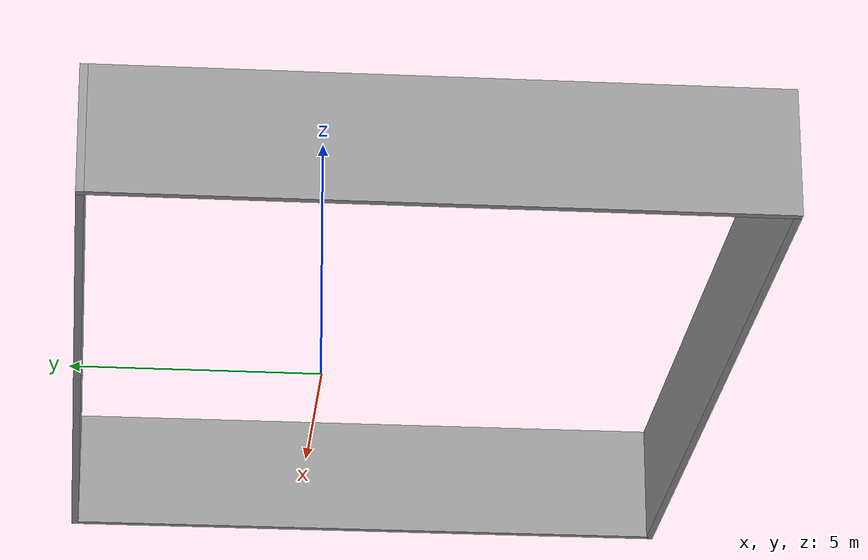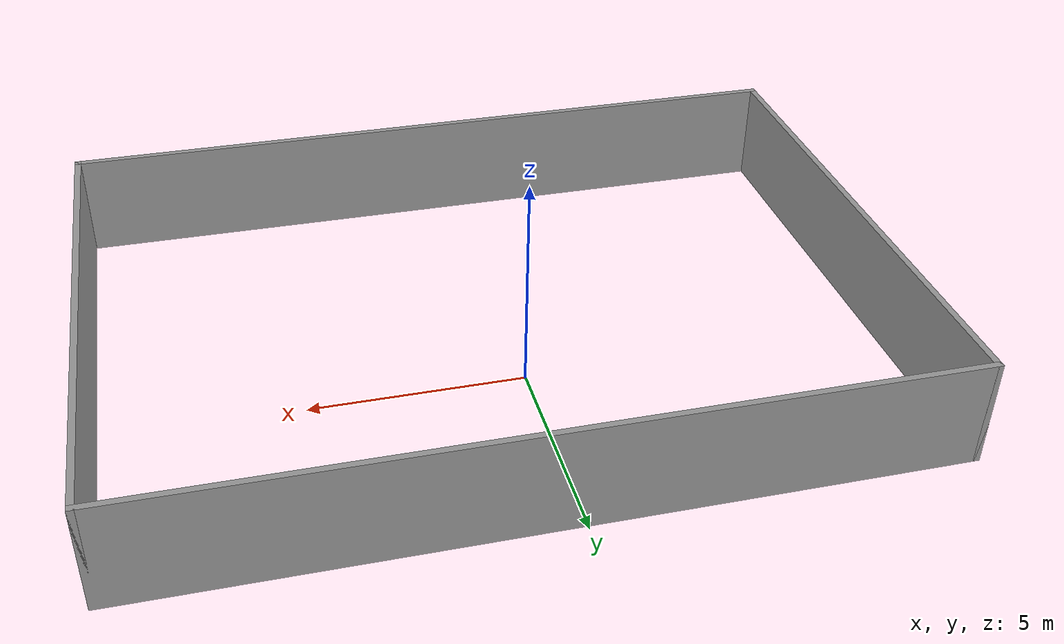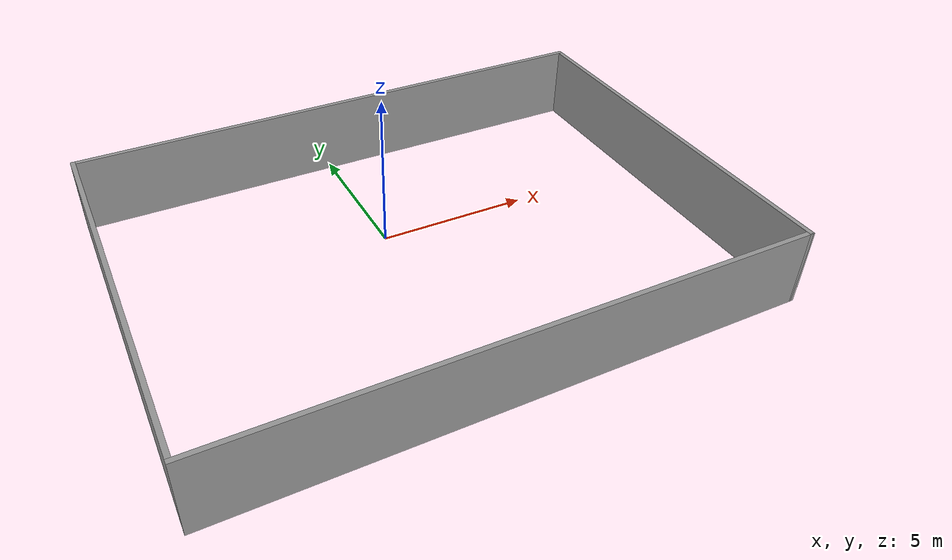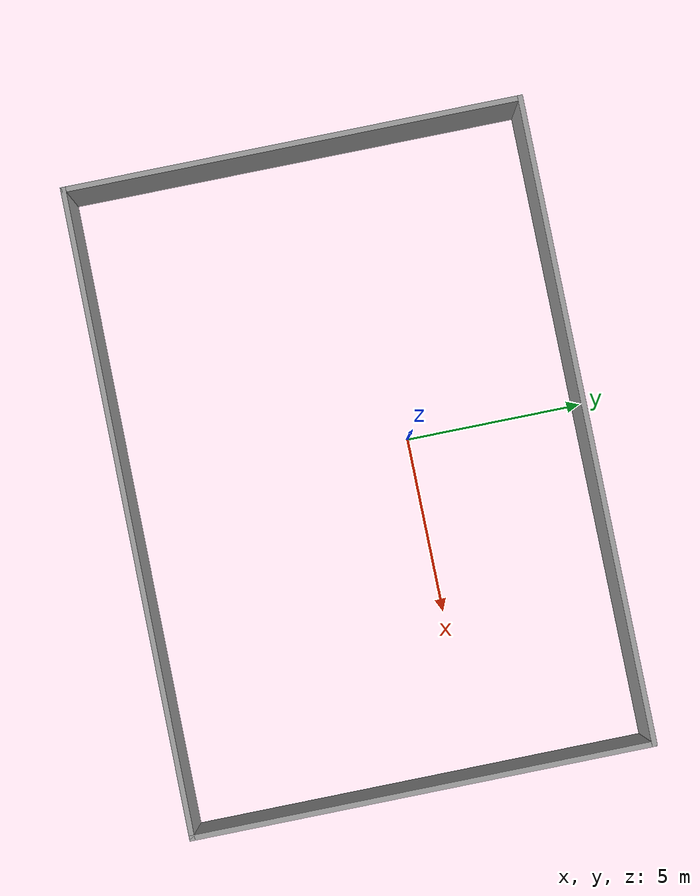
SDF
<?xml version='1.0'?>
<sdf version='1.7'>
  <model name='wall'>
    <pose>0.536992 -1.58009 0 0 -0 0</pose>
    <link name='Wall_18'>
      <collision name='Wall_18_Collision'>
        <geometry>
          <box>
            <size>18.25 0.15 2.5</size>
          </box>
        </geometry>
        <pose>0 0 1.25 0 -0 0</pose>
      </collision>
      <visual name='Wall_18_Visual'>
        <pose>0 0 1.25 0 -0 0</pose>
        <geometry>
          <box>
            <size>18.25 0.15 2.5</size>
          </box>
        </geometry>
        <material>
          <script>
            <uri>file://media/materials/scripts/gazebo.material</uri>
            <name>Gazebo/Grey</name>
          </script>
          <ambient>1 1 1 1</ambient>
        </material>
        <meta>
          <layer>0</layer>
        </meta>
      </visual>
      <pose>-0 6.425 0 0 -0 0</pose>
    </link>
    <link name='Wall_20'>
      <collision name='Wall_20_Collision'>
        <geometry>
          <box>
            <size>13 0.15 2.5</size>
          </box>
        </geometry>
        <pose>0 0 1.25 0 -0 0</pose>
      </collision>
      <visual name='Wall_20_Visual'>
        <pose>0 0 1.25 0 -0 0</pose>
        <geometry>
          <box>
            <size>13 0.15 2.5</size>
          </box>
        </geometry>
        <material>
          <script>
            <uri>file://media/materials/scripts/gazebo.material</uri>
            <name>Gazebo/Grey</name>
          </script>
          <ambient>1 1 1 1</ambient>
        </material>
        <meta>
          <layer>0</layer>
        </meta>
      </visual>
      <pose>-9.05 -0 0 0 -0 -1.5708</pose>
    </link>
    <link name='Wall_21'>
      <collision name='Wall_21_Collision'>
        <geometry>
          <box>
            <size>18.25 0.15 2.5</size>
          </box>
        </geometry>
        <pose>0 0 1.25 0 -0 0</pose>
      </collision>
      <visual name='Wall_21_Visual'>
        <pose>0 0 1.25 0 -0 0</pose>
        <geometry>
          <box>
            <size>18.25 0.15 2.5</size>
          </box>
        </geometry>
        <material>
          <script>
            <uri>file://media/materials/scripts/gazebo.material</uri>
            <name>Gazebo/Grey</name>
          </script>
          <ambient>1 1 1 1</ambient>
        </material>
        <meta>
          <layer>0</layer>
        </meta>
      </visual>
      <pose>-0 -6.425 0 0 -0 0</pose>
    </link>
    <link name='Wall_22'>
      <collision name='Wall_22_Collision'>
        <geometry>
          <box>
            <size>13 0.15 2.5</size>
          </box>
        </geometry>
        <pose>0 0 1.25 0 -0 0</pose>
      </collision>
      <visual name='Wall_22_Visual'>
        <pose>0 0 1.25 0 -0 0</pose>
        <geometry>
          <box>
            <size>13 0.15 2.5</size>
          </box>
        </geometry>
        <material>
          <script>
            <uri>file://media/materials/scripts/gazebo.material</uri>
            <name>Gazebo/Grey</name>
          </script>
          <ambient>1 1 1 1</ambient>
        </material>
        <meta>
          <layer>0</layer>
        </meta>
      </visual>
      <pose>9.05 -0 0 0 -0 1.5708</pose>
    </link>
    <static>1</static>
  </model>
</sdf>
